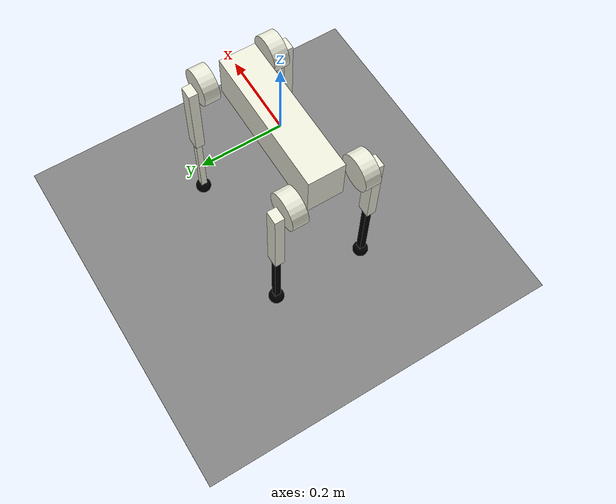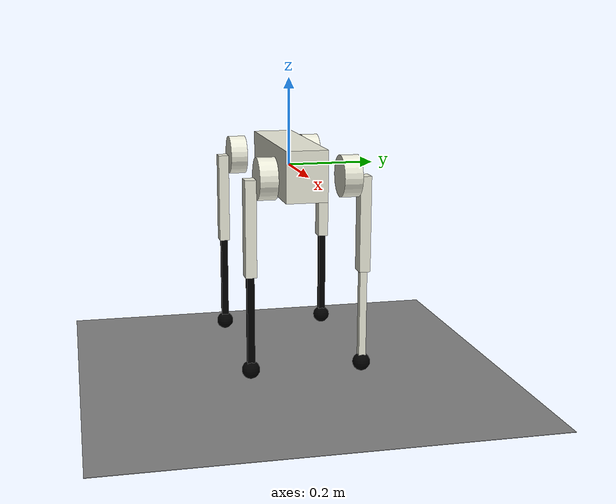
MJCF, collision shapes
<mujoco model="go1_description_xml">
  <compiler angle="radian" meshdir="../meshes/" autolimits="true"/>
  <default/>
  <asset>
    <mesh name="trunk" file="trunk.stl"/>
    <mesh name="hip" file="hip.stl"/>
    <mesh name="thigh_mirror" file="thigh_mirror.stl"/>
    <mesh name="calf" file="calf.stl"/>
    <mesh name="thigh" file="thigh.stl"/>
  </asset>
  <worldbody>
    <geom size="0.5 0.5 0.0005" pos="0 0 -0.5" type="box" contype="0" conaffinity="0" group="1" density="0"/>
    <geom size="0.5 0.5 0.0005" pos="0 0 -0.5" type="box"/>
    <body name="trunk" pos="0 0 0" gravcomp="0">
      <inertial pos="0.0116068 0.00442606 0.000107033" quat="0.0111438 0.707126 -0.00935374 0.706938" mass="6.491" diaginertia="0.0447997 0.0366257 0.0162187"/>
      <joint name="floating_base" type="free"/>
      <geom quat="0.707107 -0.707107 0 0" type="mesh" contype="0" conaffinity="0" group="1" density="0" rgba="0.913725 0.913725 0.847059 1" mesh="trunk"/>
      <geom size="0.1881 0.04675 0.057" type="box" rgba="0.913725 0.913725 0.847059 1"/>
      <geom size="0.0005 0.0005 0.0005" pos="-0.01592 -0.06659 -0.00617" type="box" contype="0" conaffinity="0" group="1" density="0" rgba="0.8 0 0 1"/>
      <body name="FR_hip" pos="0.1881 -0.04675 0" gravcomp="0">
        <inertial pos="-0.00541 0.00074 6e-06" quat="0.506126 0.507401 0.493705 0.492582" mass="0.510299" diaginertia="0.000591107 0.000396595 0.000305077"/>
        <joint name="FR_hip_joint" pos="0 0 0" axis="1 0 0" range="-0.802851 0.802851"/>
        <geom quat="0.707107 0.707107 0 0" type="mesh" contype="0" conaffinity="0" group="1" density="0" rgba="0.913725 0.913725 0.847059 1" mesh="hip"/>
        <geom size="0.046 0.02" pos="0 -0.045 0" quat="0.707107 0.707107 0 0" type="cylinder" rgba="0.913725 0.913725 0.847059 1"/>
        <body name="FR_thigh" pos="0 -0.08 0" gravcomp="0">
          <inertial pos="-0.003468 0.018947 -0.032736" quat="0.999266 0.00067676 -0.0382978 0.000639813" mass="0.898919" diaginertia="0.00542178 0.00514246 0.000998869"/>
          <joint name="FR_thigh_joint" pos="0 0 0" axis="0 1 0" range="-1.0472 4.18879"/>
          <geom quat="0.707107 -0.707107 0 0" type="mesh" contype="0" conaffinity="0" group="1" density="0" rgba="0.913725 0.913725 0.847059 1" mesh="thigh_mirror"/>
          <geom size="0.1065 0.01225 0.017" pos="0 0 -0.1065" quat="0.707107 0 0.707107 0" type="box" rgba="0.913725 0.913725 0.847059 1"/>
          <body name="FR_calf" pos="0 0 -0.213" gravcomp="0">
            <inertial pos="0.00455603 0.0009473 -0.147239" quat="0.762045 0.00970173 0.0180098 0.647201" mass="0.218015" diaginertia="0.00399678 0.00398122 3.99428e-05"/>
            <joint name="FR_calf_joint" pos="0 0 0" axis="0 1 0" range="-2.69653 -0.916298"/>
            <geom quat="0.707107 -0.707107 0 0" type="mesh" contype="0" conaffinity="0" group="1" density="0" rgba="0 0 0 1" mesh="calf"/>
            <geom size="0.1065 0.008 0.008" pos="0 0 -0.1065" quat="0.707107 0 0.707107 0" type="box" rgba="0 0 0 1"/>
            <geom size="0.01" pos="0 0 -0.213" contype="0" conaffinity="0" group="1" density="0" rgba="0 0 0 1"/>
            <geom size="0.02" pos="0 0 -0.213" rgba="0 0 0 1"/>
          </body>
        </body>
      </body>
      <body name="FL_hip" pos="0.1881 0.04675 0" gravcomp="0">
        <inertial pos="-0.00541 -0.00074 6e-06" quat="0.492582 0.493705 0.507401 0.506126" mass="0.510299" diaginertia="0.000591107 0.000396595 0.000305077"/>
        <joint name="FL_hip_joint" pos="0 0 0" axis="1 0 0" range="-0.802851 0.802851"/>
        <geom quat="0.707107 -0.707107 0 0" type="mesh" contype="0" conaffinity="0" group="1" density="0" rgba="0.913725 0.913725 0.847059 1" mesh="hip"/>
        <geom size="0.046 0.02" pos="0 0.045 0" quat="0.707107 0.707107 0 0" type="cylinder" rgba="0.913725 0.913725 0.847059 1"/>
        <body name="FL_thigh" pos="0 0.08 0" gravcomp="0">
          <inertial pos="-0.003468 -0.018947 -0.032736" quat="0.999266 -0.00067676 -0.0382978 -0.000639813" mass="0.898919" diaginertia="0.00542178 0.00514246 0.000998869"/>
          <joint name="FL_thigh_joint" pos="0 0 0" axis="0 1 0" range="-1.0472 4.18879"/>
          <geom quat="0.707107 -0.707107 0 0" type="mesh" contype="0" conaffinity="0" group="1" density="0" rgba="0.913725 0.913725 0.847059 1" mesh="thigh"/>
          <geom size="0.1065 0.01225 0.017" pos="0 0 -0.1065" quat="0.707107 0 0.707107 0" type="box" rgba="0.913725 0.913725 0.847059 1"/>
          <body name="FL_calf" pos="0 0 -0.213" gravcomp="0">
            <inertial pos="0.00455603 0.0009473 -0.147239" quat="0.762045 0.00970173 0.0180098 0.647201" mass="0.218015" diaginertia="0.00399678 0.00398122 3.99428e-05"/>
            <joint name="FL_calf_joint" pos="0 0 0" axis="0 1 0" range="-2.69653 -0.916298"/>
            <geom quat="0.707107 -0.707107 0 0" type="mesh" contype="0" conaffinity="0" group="1" density="0" rgba="0.913725 0.913725 0.847059 1" mesh="calf"/>
            <geom size="0.1065 0.008 0.008" pos="0 0 -0.1065" quat="0.707107 0 0.707107 0" type="box" rgba="0.913725 0.913725 0.847059 1"/>
            <geom size="0.01" pos="0 0 -0.213" contype="0" conaffinity="0" group="1" density="0" rgba="0 0 0 1"/>
            <geom size="0.02" pos="0 0 -0.213" rgba="0 0 0 1"/>
          </body>
        </body>
      </body>
      <body name="RR_hip" pos="-0.1881 -0.04675 0" gravcomp="0">
        <inertial pos="0.00541 0.00074 6e-06" quat="0.493705 0.492582 0.506126 0.507401" mass="0.510299" diaginertia="0.000591107 0.000396595 0.000305077"/>
        <joint name="RR_hip_joint" pos="0 0 0" axis="1 0 0" range="-0.802851 0.802851"/>
        <geom quat="0 0 0.707107 -0.707107" type="mesh" contype="0" conaffinity="0" group="1" density="0" rgba="0.913725 0.913725 0.847059 1" mesh="hip"/>
        <geom size="0.046 0.02" pos="0 -0.045 0" quat="0.707107 0.707107 0 0" type="cylinder" rgba="0.913725 0.913725 0.847059 1"/>
        <body name="RR_thigh" pos="0 -0.08 0" gravcomp="0">
          <inertial pos="-0.003468 0.018947 -0.032736" quat="0.999266 0.00067676 -0.0382978 0.000639813" mass="0.898919" diaginertia="0.00542178 0.00514246 0.000998869"/>
          <joint name="RR_thigh_joint" pos="0 0 0" axis="0 1 0" range="-1.0472 4.18879"/>
          <geom quat="0.707107 -0.707107 0 0" type="mesh" contype="0" conaffinity="0" group="1" density="0" rgba="0.913725 0.913725 0.847059 1" mesh="thigh_mirror"/>
          <geom size="0.1065 0.01225 0.017" pos="0 0 -0.1065" quat="0.707107 0 0.707107 0" type="box" rgba="0.913725 0.913725 0.847059 1"/>
          <body name="RR_calf" pos="0 0 -0.213" gravcomp="0">
            <inertial pos="0.00455603 0.0009473 -0.147239" quat="0.762045 0.00970173 0.0180098 0.647201" mass="0.218015" diaginertia="0.00399678 0.00398122 3.99428e-05"/>
            <joint name="RR_calf_joint" pos="0 0 0" axis="0 1 0" range="-2.69653 -0.916298"/>
            <geom quat="0.707107 -0.707107 0 0" type="mesh" contype="0" conaffinity="0" group="1" density="0" rgba="0 0 0 1" mesh="calf"/>
            <geom size="0.1065 0.008 0.008" pos="0 0 -0.1065" quat="0.707107 0 0.707107 0" type="box" rgba="0 0 0 1"/>
            <geom size="0.01" pos="0 0 -0.213" contype="0" conaffinity="0" group="1" density="0" rgba="0 0 0 1"/>
            <geom size="0.02" pos="0 0 -0.213" rgba="0 0 0 1"/>
          </body>
        </body>
      </body>
      <body name="RL_hip" pos="-0.1881 0.04675 0" gravcomp="0">
        <inertial pos="0.00541 -0.00074 6e-06" quat="0.507401 0.506126 0.492582 0.493705" mass="0.510299" diaginertia="0.000591107 0.000396595 0.000305077"/>
        <joint name="RL_hip_joint" pos="0 0 0" axis="1 0 0" range="-0.802851 0.802851"/>
        <geom quat="0 0 0.707107 0.707107" type="mesh" contype="0" conaffinity="0" group="1" density="0" rgba="0.913725 0.913725 0.847059 1" mesh="hip"/>
        <geom size="0.046 0.02" pos="0 0.045 0" quat="0.707107 0.707107 0 0" type="cylinder" rgba="0.913725 0.913725 0.847059 1"/>
        <body name="RL_thigh" pos="0 0.08 0" gravcomp="0">
          <inertial pos="-0.003468 -0.018947 -0.032736" quat="0.999266 -0.00067676 -0.0382978 -0.000639813" mass="0.898919" diaginertia="0.00542178 0.00514246 0.000998869"/>
          <joint name="RL_thigh_joint" pos="0 0 0" axis="0 1 0" range="-1.0472 4.18879"/>
          <geom quat="0.707107 -0.707107 0 0" type="mesh" contype="0" conaffinity="0" group="1" density="0" rgba="0.913725 0.913725 0.847059 1" mesh="thigh"/>
          <geom size="0.1065 0.01225 0.017" pos="0 0 -0.1065" quat="0.707107 0 0.707107 0" type="box" rgba="0.913725 0.913725 0.847059 1"/>
          <body name="RL_calf" pos="0 0 -0.213" gravcomp="0">
            <inertial pos="0.00455603 0.0009473 -0.147239" quat="0.762045 0.00970173 0.0180098 0.647201" mass="0.218015" diaginertia="0.00399678 0.00398122 3.99428e-05"/>
            <joint name="RL_calf_joint" pos="0 0 0" axis="0 1 0" range="-2.69653 -0.916298"/>
            <geom quat="0.707107 -0.707107 0 0" type="mesh" contype="0" conaffinity="0" group="1" density="0" rgba="0 0 0 1" mesh="calf"/>
            <geom size="0.1065 0.008 0.008" pos="0 0 -0.1065" quat="0.707107 0 0.707107 0" type="box" rgba="0 0 0 1"/>
            <geom size="0.01" pos="0 0 -0.213" contype="0" conaffinity="0" group="1" density="0" rgba="0 0 0 1"/>
            <geom size="0.02" pos="0 0 -0.213" rgba="0 0 0 1"/>
          </body>
        </body>
      </body>
    </body>
  </worldbody>
</mujoco>
